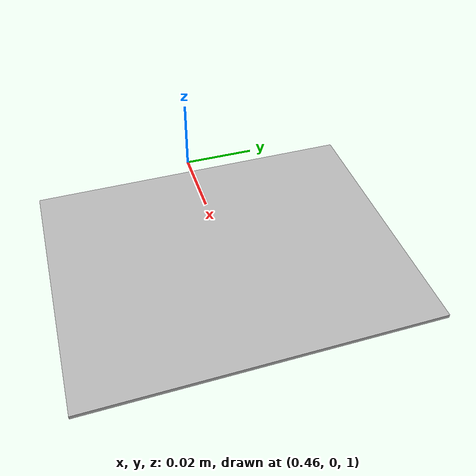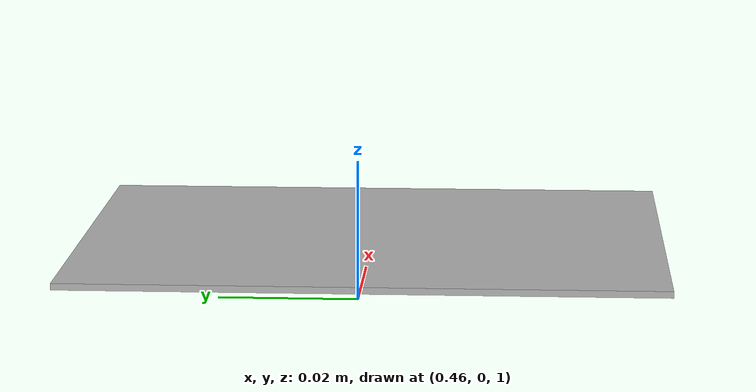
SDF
<?xml version="1.0" ?>
<sdf version="1.4">
  <model name="checkerboard">
    <link name="link">
      <pose>0.5 0 1.0 0 0 0</pose>
      <inertial>
        <mass>1</mass>
        <inertia>
          <ixx>0.0</ixx>
          <ixy>0.0</ixy>
          <ixz>0.0</ixz>
          <iyy>0.0</iyy>
          <iyz>0.0</iyz>
          <izz>0.1</izz>
        </inertia>
      </inertial>
      <collision name="collision">
        <geometry>
          <box>
            <size>.07 .09 .001</size>
          </box>
        </geometry>
      </collision>
      <visual name="visual">
        <geometry>
          <box>
            <size>.07 .09 .001</size>
          </box>
        </geometry>
        <material>
          <script>
            <uri>model://checkerboard/materials/scripts</uri>
            <uri>model://checkerboard/materials/textures</uri>
            <name>checkerboard</name>
          </script>
        </material>
      </visual>
    </link>
    <static>1</static>
  </model>
</sdf>
